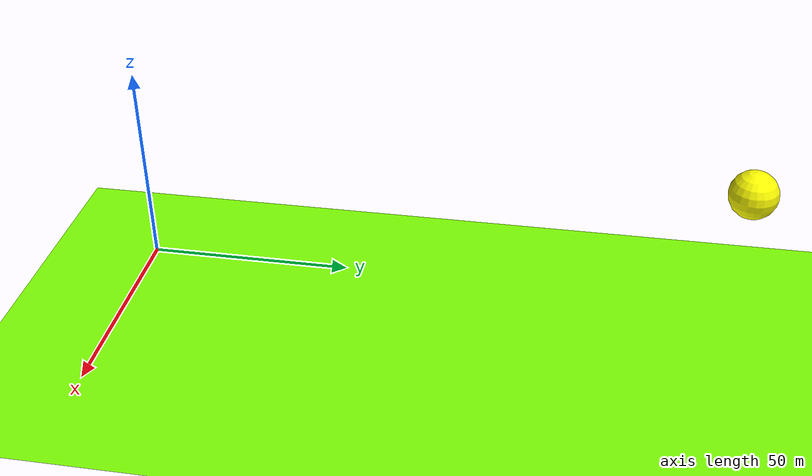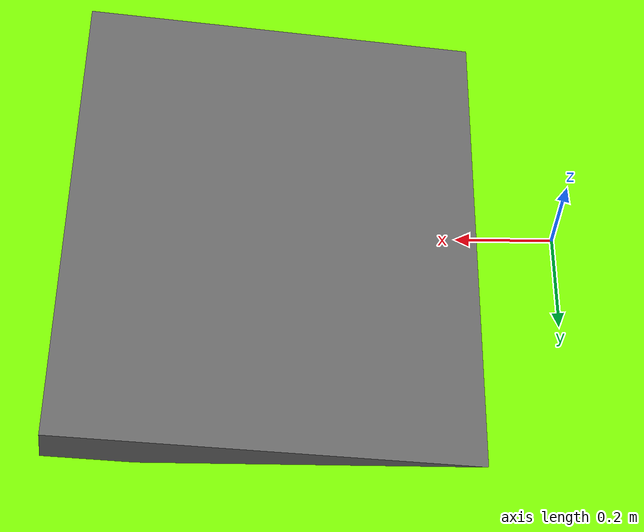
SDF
<?xml version="1.0" ?>
<sdf version="1.9">
  <world name="summer_field2">
    <physics name="1ms" type="ignored">
      <max_step_size>0.001</max_step_size>
      <real_time_factor>1</real_time_factor>
      <real_time_update_rate>1000</real_time_update_rate>
    </physics>

    <!-- sky -->
    <scene>
      <ambient>0.3 0.3 0.3 1</ambient>
      <background>0.7 0.9 1.0 1</background>
      <shadows>false</shadows>
      <grid>false</grid>
    </scene>
    <light name="sun" type="directional">
      <cast_shadows>false</cast_shadows>
      <pose>0 0 -1 0 0 0</pose>
      <diffuse>1 1 1 1</diffuse>
      <specular>0.5 0.5 0.5 1</specular>
      <direction>0 -1.0 -0.4</direction>
      <intensity>3</intensity>
    </light>
    <model name="sun_visual">
      <static>true</static>
      <cast_shadows>false</cast_shadows>
      <pose>30 140 50 0 0 0</pose>
      <link name="link">
        <visual name="visual">
          <geometry>
            <sphere>
              <radius>5.0</radius>
            </sphere>
          </geometry>
          <material>
            <ambient>1 1 0 1</ambient>
            <diffuse>1 1 0 1</diffuse>
            <specular>0 0 0 1</specular>
            <emissive>1 1 0.5 1</emissive>
          </material>
        </visual>
      </link>
    </model>

    <model name="ground">
      <static>true</static>
      <link name="link">
        <collision name="collision">
          <geometry>
            <plane>
              <normal>0 0 1</normal>
              <size>20 20</size>
            </plane>
          </geometry>
        </collision>

        <visual name="visual">
          <geometry>
            <plane>
              <normal>0 0 1</normal>
              <size>20 20</size>
            </plane>
          </geometry>
          <material>
            <ambient>0.48 0.98 0.0 1</ambient>
            <diffuse>0.48 0.98 0.0 1</diffuse>
            <specular>0 0 0 1</specular>
            <pbr>
              <metal>
                <albedo_map>grass.png</albedo_map>
              </metal>
            </pbr>
            <plugin name="gz::sim::systems::TextureRepeat" filename="gz-sim-texture-repeat-system">
              <u_num>20</u_num>
              <v_num>20</v_num>
            </plugin>
          </material>
        </visual>
      </link>
    </model>

    <model name="slope">
      <static>true</static>
      <pose>0.5 0 0.0 0 -0.15 0</pose>
      <link name="slope_link">
        <collision name="collision">
          <geometry>
            <box>
              <size>1.0 1.0 0.1</size>
            </box>
          </geometry>
        </collision>
        <visual name="visual">
          <geometry>
            <box>
              <size>1.0 1.0 0.1</size>
            </box>
          </geometry>
          <material>
            <ambient>0.3 0.3 0.3 1</ambient>
            <diffuse>0.4 0.4 0.4 1</diffuse>
            <specular>0 0 0 1</specular>
          </material>
        </visual>
      </link>
    </model>

  </world>
</sdf>
